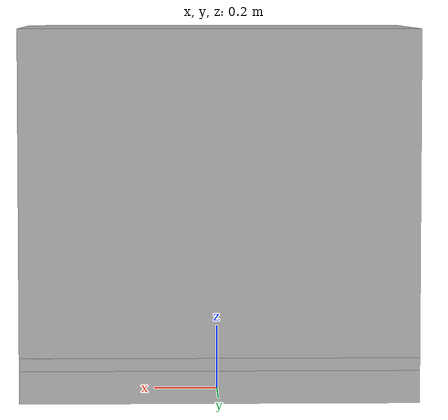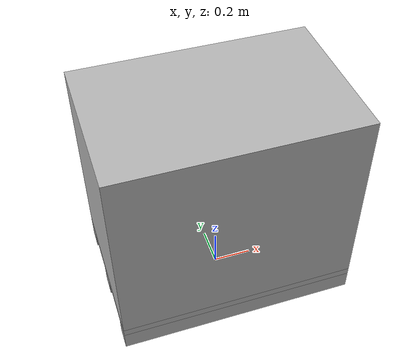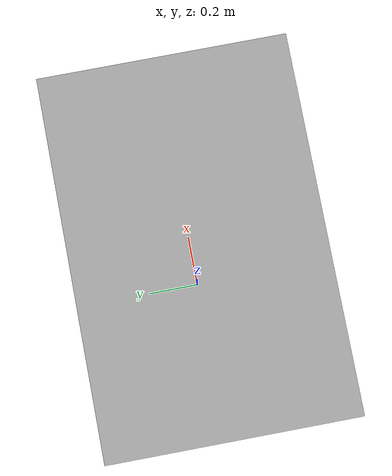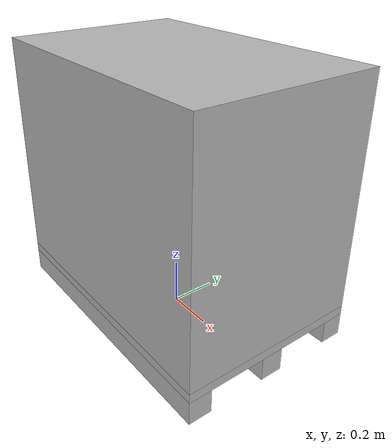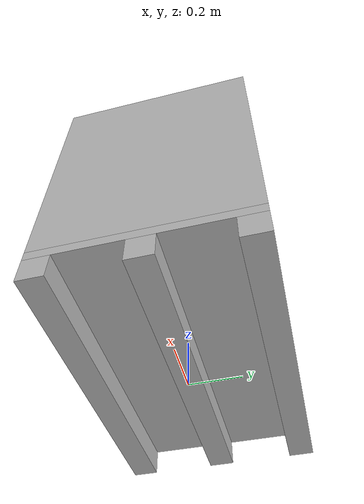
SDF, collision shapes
<?xml version='1.0'?>
<sdf version="1.7">
    <model name="pallet_box_mobile">
        <pose>0 0 0.01 0 0 0</pose>
        <self_collide>false</self_collide>
        <!-- BASE_LINK FRAME -->
        <link name="pallet_base">
            <pose>0 0 0 0 0 0</pose>
            <inertial>
                <pose>0 0 0.4 0 0 0</pose>
                <mass>200</mass>
                <inertia>
                    <ixx>0.1</ixx>
                    <ixy>0</ixy>
                    <ixz>0</ixz>
                    <iyy>0.1</iyy>
                    <iyz>0</iyz>
                    <izz>0.1</izz>
                </inertia>
            </inertial>
            <collision name="pallet_top_collision">
                <pose>0 0 0.125 0 0 0</pose>
                <geometry>
                    <box>
                        <size>1.22 0.8 0.04</size>
                    </box>
                </geometry>
                <surface>
                    <friction>
                        <ode>
                            <mu>0.4</mu>
                            <mu2>0.4</mu2>
                        </ode>
                    </friction>
                </surface>
            </collision>
            <collision name="pallet_center_collision">
                <pose>0 0 0.055 0 0 0</pose>
                <geometry>
                    <box>
                        <size>1.22 0.1 0.1</size>
                    </box>
                </geometry>
            </collision>
            <collision name="pallet_left_collision">
                <pose>0 -0.35 0.055 0 0 0</pose>
                <geometry>
                    <box>
                        <size>1.22 0.1 0.1</size>
                    </box>
                </geometry>
            </collision>
            <collision name="pallet_right_collision">
                <pose>0 0.35 0.055 0 0 0</pose>
                <geometry>
                    <box>
                        <size>1.22 0.1 0.1</size>
                    </box>
                </geometry>
            </collision>
            <collision name="boxes_collision">
                <pose>0 0 0.644 0 0 0</pose>
                <geometry>
                    <box>
                        <size>1.22 0.8 1</size>
                    </box>
                </geometry>
            </collision>
            <visual name="pallet_visual">
                <pose>0 0 0 0 0 0</pose>
                <geometry>
                    <mesh>
                        <scale>1 1 1</scale>
                        <uri>https://fuel.ignitionrobotics.org/1.0/MovAi/models/pallet/tip/files/meshes/pallet.dae</uri>
                    </mesh>
                </geometry>
            </visual>
            <visual name="boxes_visual">
                <plugin filename="ignition-gazebo-thermal-system" name="gz::sim::systems::Thermal"><temperature>330.0</temperature></plugin>
                <pose>-0.053875 0 0 0 0 0</pose>
                <geometry>
                    <mesh>
                        <scale>1 1 1</scale>
                        <uri>https://fuel.ignitionrobotics.org/1.0/movai/models/pallet_box_mobile/3/files/meshes/boxes.dae</uri>
                    </mesh>
                </geometry>
            </visual>
        </link>
        <plugin filename="ignition-gazebo-pose-publisher-system" name="ignition::gazebo::systems::PosePublisher">
            <publish_link_pose>true</publish_link_pose>
            <publish_collision_pose>false</publish_collision_pose>
            <publish_visual_pose>false</publish_visual_pose>
            <publish_nested_model_pose>true</publish_nested_model_pose>
            <update_frequency>20</update_frequency>
        </plugin>
        <static>0</static>
    </model>
</sdf>
